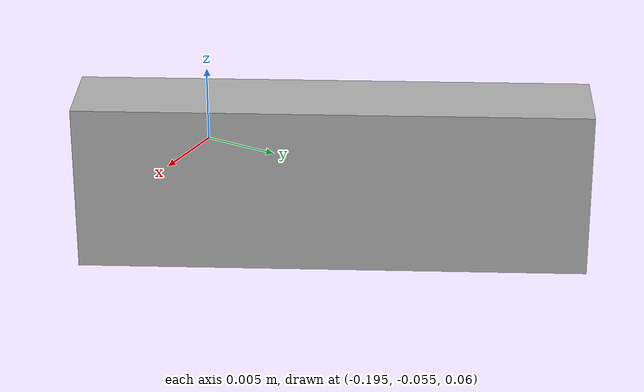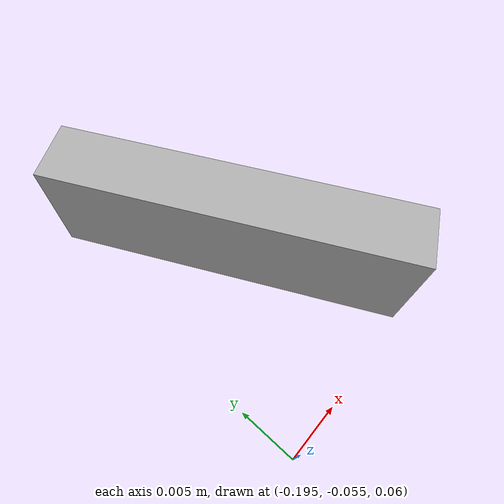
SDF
<?xml version="1.0"?>
<sdf version="1.4">
    <model name="grasp_object2">
        <link name="object">
            <pose>-0.185 -0.04 0.065 0 0 90</pose>
            <inertial>
                <inertia>
                    <ixx>0.0001</ixx>
                    <ixy>0</ixy>
                    <ixz>0</ixz>
                    <iyy>0</iyy>
                    <iyz>0</iyz>
                    <izz>0</izz>
                </inertia>
                <mass>0.01</mass>
            </inertial>
            <collision name="collision">
                <geometry>
                    <box>
                        <size>0.03 0.005 0.01</size>
                    </box>
                </geometry>
                <surface>
                    <friction>
                        <ode>
                            <mu>0.8</mu>
                            <mu2>0.8</mu2>
                        </ode>
                    </friction>
                </surface>
            </collision>
            <visual name="visual">
                <geometry>
                    <box>
                        <size>0.03 0.005 0.01</size>
                    </box>
                </geometry>
                <material>
                    <script>Gazebo/Purple</script>
                </material>
            </visual>
        </link>
    </model>
</sdf>
